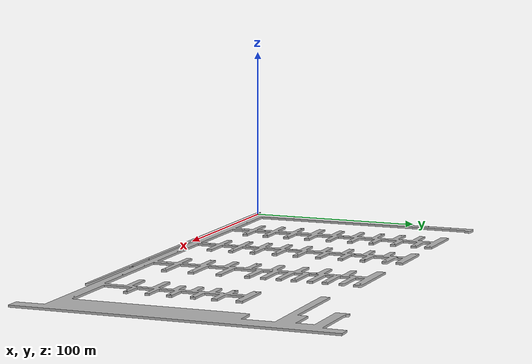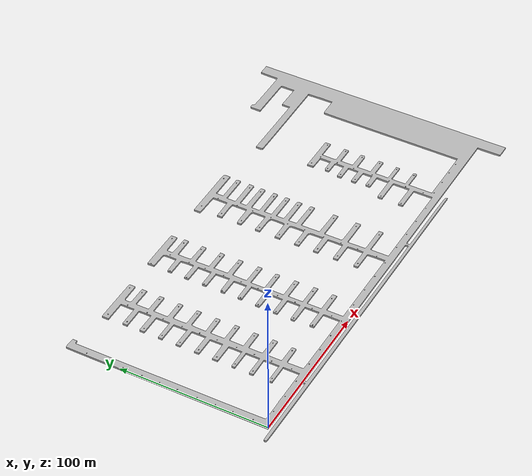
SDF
<?xml version="1.0"?>
<!-- Model for the short navigation course -->
<sdf version="1.11">
  <model name="rsyc_platform">
    <link name="platform">
      <pose>0 0 0 0 0 0</pose>
      <visual name="Platform_visual">
          <geometry>
              <mesh>
                  <uri>meshes/rsyc_platform.dae</uri>
              </mesh>
          </geometry>
      </visual>
      <collision name="Platform_collision">
        <geometry>
            <mesh>
                <uri>meshes/rsyc_platform.dae</uri>
            </mesh>
        </geometry>
      </collision>
      <inertial>
        <pose>146.7 40 -20 0 0 0</pose>
        <mass>2000000</mass>
        <inertia>
          <ixx>6666668333.33</ixx>
          <iyy>1666668333.33</iyy>
          <izz>8333333333.33</izz>
          <ixy>0.01</ixy>
          <ixz>0.01</ixz>
          <iyz>0.01</iyz>
        </inertia>
      </inertial>
    </link>
  </model>
</sdf>
